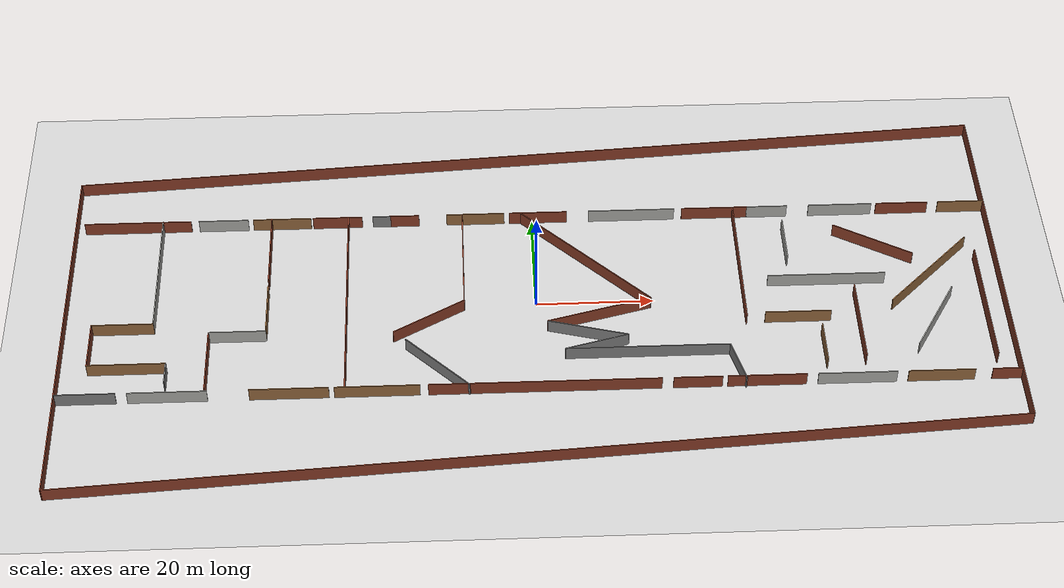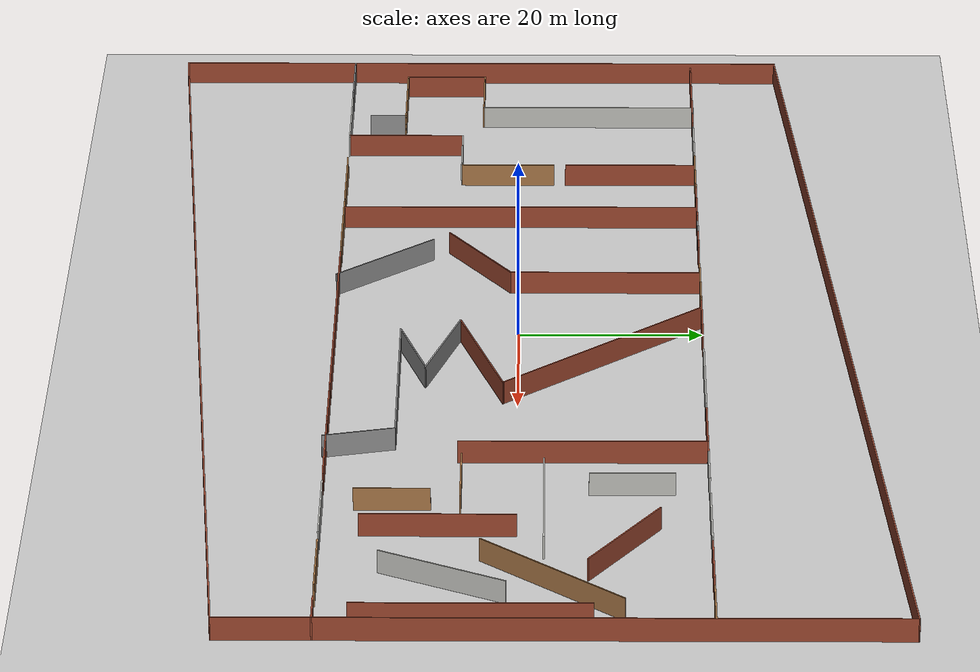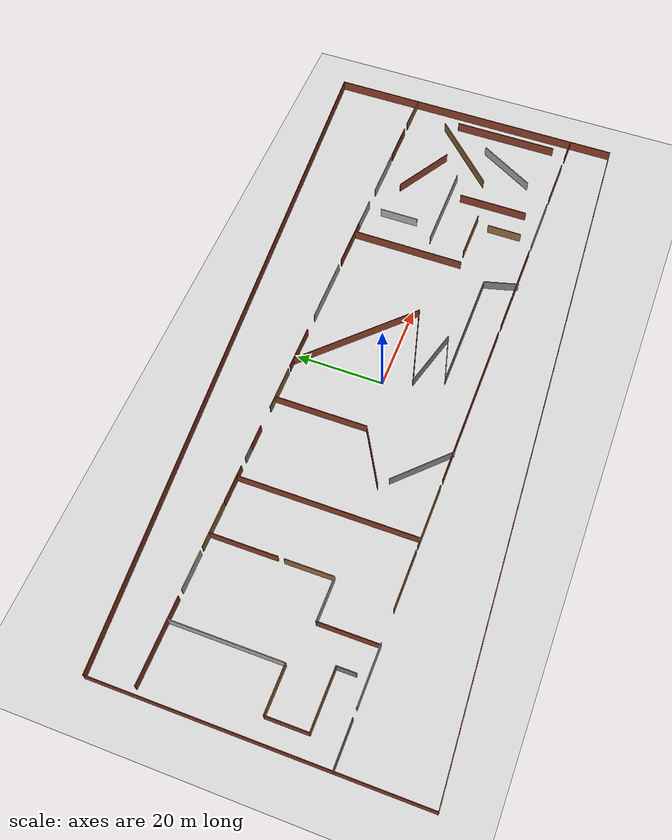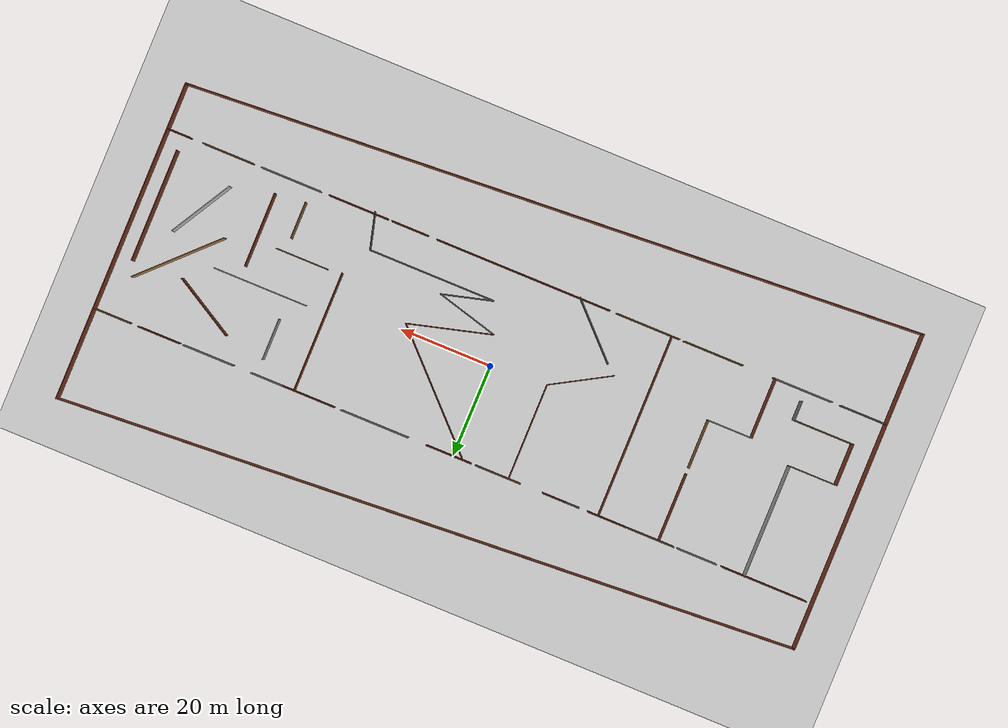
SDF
<sdf version="1.6">
 <world name="default">
  <model name="ground_plane">
   <static>1</static>
   <link name="link">
    <collision name="collision">
     <geometry><plane><normal>0 0 1</normal><size>100 100</size></plane></geometry>
     <surface><friction><ode><mu>100</mu><mu2>50</mu2></ode></friction></surface>
    </collision>
    <visual name="visual">
     <cast_shadows>0</cast_shadows>
     <geometry><plane><normal>0 0 1</normal><size>100 100</size></plane></geometry>
     <material>
      <script><uri>file://media/materials/scripts/gazebo.material</uri><name>Gazebo/Grey</name></script>
     </material>
    </visual>
   </link>
  </model>
  <model name="office_hall">
   <link name="Wall_10">
    <collision name="Wall_10_Collision">
     <geometry><box><size>160.462 0.15 2.5</size></box></geometry>
     <pose>0 0 1.25 0 -0 0</pose>
    </collision>
    <visual name="Wall_10_Visual">
     <pose>0 0 1.25 0 -0 0</pose>
     <geometry><box><size>160.462 0.15 2.5</size></box></geometry>
     <material>
      <script><uri>file://media/materials/scripts/gazebo.material</uri><name>Gazebo/Bricks</name></script>
      <ambient>1 1 1 1</ambient>
     </material>
     <meta><layer>0</layer></meta>
    </visual>
    <pose>0 -35 0 0 -0 -3.07917</pose>
   </link>
   <link name="Wall_101">
    <collision name="Wall_101_Collision">
     <geometry><box><size>15 0.15 2.5</size></box></geometry>
     <pose>0 0 1.25 0 -0 0</pose>
    </collision>
    <visual name="Wall_101_Visual">
     <pose>0 0 1.25 0 -0 0</pose>
     <geometry><box><size>15 0.15 2.5</size></box></geometry>
     <material>
      <script><uri>file://media/materials/scripts/gazebo.material</uri><name>Gazebo/Grey</name></script>
      <ambient>1 1 1 1</ambient>
     </material>
     <meta><layer>0</layer></meta>
    </visual>
    <pose>-16.9833 -14.9511 0 0 -0 -0.785398</pose>
   </link>
   <link name="Wall_103">
    <collision name="Wall_103_Collision">
     <geometry><box><size>30.5 0.15 2.5</size></box></geometry>
     <pose>0 0 1.25 0 -0 0</pose>
    </collision>
    <visual name="Wall_103_Visual">
     <pose>0 0 1.25 0 -0 0</pose>
     <geometry><box><size>30.5 0.15 2.5</size></box></geometry>
     <material>
      <script><uri>file://media/materials/scripts/gazebo.material</uri><name>Gazebo/Bricks</name></script>
      <ambient>1 1 1 1</ambient>
     </material>
     <meta><layer>0</layer></meta>
    </visual>
    <pose>8.72796 9.16226 0 0 -0 -0.785398</pose>
   </link>
   <link name="Wall_104">
    <collision name="Wall_104_Collision">
     <geometry><box><size>18.5 0.15 2.5</size></box></geometry>
     <pose>0 0 1.25 0 -0 0</pose>
    </collision>
    <visual name="Wall_104_Visual">
     <pose>0 0 1.25 0 -0 0</pose>
     <geometry><box><size>18.5 0.15 2.5</size></box></geometry>
     <material>
      <script><uri>file://media/materials/scripts/gazebo.material</uri><name>Gazebo/Bricks</name></script>
      <ambient>1 1 1 1</ambient>
     </material>
     <meta><layer>0</layer></meta>
    </visual>
    <pose>10.5959 -3.94275 0 0 -0 -2.87979</pose>
   </link>
   <link name="Wall_105">
    <collision name="Wall_105_Collision">
     <geometry><box><size>14 0.15 2.5</size></box></geometry>
     <pose>0 0 1.25 0 -0 0</pose>
    </collision>
    <visual name="Wall_105_Visual">
     <pose>0 0 1.25 0 -0 0</pose>
     <geometry><box><size>14 0.15 2.5</size></box></geometry>
     <material>
      <script><uri>file://media/materials/scripts/gazebo.material</uri><name>Gazebo/Grey</name></script>
      <ambient>1 1 1 1</ambient>
     </material>
     <meta><layer>0</layer></meta>
    </visual>
    <pose>8.4226 -8.10974 0 0 -0 -0.261799</pose>
   </link>
   <link name="Wall_106">
    <collision name="Wall_106_Collision">
     <geometry><box><size>11.25 0.15 2.5</size></box></geometry>
     <pose>0 0 1.25 0 -0 0</pose>
    </collision>
    <visual name="Wall_106_Visual">
     <pose>0 0 1.25 0 -0 0</pose>
     <geometry><box><size>11.25 0.15 2.5</size></box></geometry>
     <material>
      <script><uri>file://media/materials/scripts/gazebo.material</uri><name>Gazebo/Grey</name></script>
      <ambient>1 1 1 1</ambient>
     </material>
     <meta><layer>0</layer></meta>
    </visual>
    <pose>9.75075 -11.3385 0 0 -0 -2.87979</pose>
   </link>
   <link name="Wall_107">
    <collision name="Wall_107_Collision">
     <geometry><box><size>27.75 0.15 2.5</size></box></geometry>
     <pose>0 0 1.25 0 -0 0</pose>
    </collision>
    <visual name="Wall_107_Visual">
     <pose>0 0 1.25 0 -0 0</pose>
     <geometry><box><size>27.75 0.15 2.5</size></box></geometry>
     <material>
      <script><uri>file://media/materials/scripts/gazebo.material</uri><name>Gazebo/Grey</name></script>
      <ambient>1 1 1 1</ambient>
     </material>
     <meta><layer>0</layer></meta>
    </visual>
    <pose>18.1899 -12.775 0 0 -0 0</pose>
   </link>
   <link name="Wall_108">
    <collision name="Wall_108_Collision">
     <geometry><box><size>8 0.15 2.5</size></box></geometry>
     <pose>0 0 1.25 0 -0 0</pose>
    </collision>
    <visual name="Wall_108_Visual">
     <pose>0 0 1.25 0 -0 0</pose>
     <geometry><box><size>8 0.15 2.5</size></box></geometry>
     <material>
      <script><uri>file://media/materials/scripts/gazebo.material</uri><name>Gazebo/Grey</name></script>
      <ambient>1 1 1 1</ambient>
     </material>
     <meta><layer>0</layer></meta>
    </visual>
    <pose>33.0057 -16.5662 0 0 -0 -1.309</pose>
   </link>
   <link name="Wall_11">
    <collision name="Wall_11_Collision">
     <geometry><box><size>70.15 0.15 2.5</size></box></geometry>
     <pose>0 0 1.25 0 -0 0</pose>
    </collision>
    <visual name="Wall_11_Visual">
     <pose>0 0 1.25 0 -0 0</pose>
     <geometry><box><size>70.15 0.15 2.5</size></box></geometry>
     <material>
      <script><uri>file://media/materials/scripts/gazebo.material</uri><name>Gazebo/Bricks</name></script>
      <ambient>1 1 1 1</ambient>
     </material>
     <meta><layer>0</layer></meta>
    </visual>
    <pose>-80 -5 0 0 -0 1.5708</pose>
   </link>
   <link name="Wall_110">
    <collision name="Wall_110_Collision">
     <geometry><box><size>26.25 0.15 2.5</size></box></geometry>
     <pose>0 0 1.25 0 -0 0</pose>
    </collision>
    <visual name="Wall_110_Visual">
     <pose>0 0 1.25 0 -0 0</pose>
     <geometry><box><size>26.25 0.15 2.5</size></box></geometry>
     <material>
      <script><uri>file://media/materials/scripts/gazebo.material</uri><name>Gazebo/Bricks</name></script>
      <ambient>1 1 1 1</ambient>
     </material>
     <meta><layer>0</layer></meta>
    </visual>
    <pose>35.4468 6.95022 0 0 -0 -1.5708</pose>
   </link>
   <link name="Wall_112">
    <collision name="Wall_112_Collision">
     <geometry><box><size>11.25 0.15 2.5</size></box></geometry>
     <pose>0 0 1.25 0 -0 0</pose>
    </collision>
    <visual name="Wall_112_Visual">
     <pose>0 0 1.25 0 -0 0</pose>
     <geometry><box><size>11.25 0.15 2.5</size></box></geometry>
     <material>
      <script><uri>file://media/materials/scripts/gazebo.material</uri><name>Gazebo/Wood</name></script>
      <ambient>1 1 1 1</ambient>
     </material>
     <meta><layer>0</layer></meta>
    </visual>
    <pose>44.2252 -5.7192 0 0 -0 0</pose>
   </link>
   <link name="Wall_114">
    <collision name="Wall_114_Collision">
     <geometry><box><size>8 0.15 2.5</size></box></geometry>
     <pose>0 0 1.25 0 -0 0</pose>
    </collision>
    <visual name="Wall_114_Visual">
     <pose>0 0 1.25 0 -0 0</pose>
     <geometry><box><size>8 0.15 2.5</size></box></geometry>
     <material>
      <script><uri>file://media/materials/scripts/gazebo.material</uri><name>Gazebo/Wood</name></script>
      <ambient>1 1 1 1</ambient>
     </material>
     <meta><layer>0</layer></meta>
    </visual>
    <pose>47.9299 -12.765 0 0 -0 -1.5708</pose>
   </link>
   <link name="Wall_116">
    <collision name="Wall_116_Collision">
     <geometry><box><size>9 0.15 2.5</size></box></geometry>
     <pose>0 0 1.25 0 -0 0</pose>
    </collision>
    <visual name="Wall_116_Visual">
     <pose>0 0 1.25 0 -0 0</pose>
     <geometry><box><size>9 0.15 2.5</size></box></geometry>
     <material>
      <script><uri>file://media/materials/scripts/gazebo.material</uri><name>Gazebo/CeilingTiled</name></script>
      <ambient>1 1 1 1</ambient>
     </material>
     <meta><layer>0</layer></meta>
    </visual>
    <pose>43.8406 12.024 0 0 -0 -1.5708</pose>
   </link>
   <link name="Wall_118">
    <collision name="Wall_118_Collision">
     <geometry><box><size>20.25 0.15 2.5</size></box></geometry>
     <pose>0 0 1.25 0 -0 0</pose>
    </collision>
    <visual name="Wall_118_Visual">
     <pose>0 0 1.25 0 -0 0</pose>
     <geometry><box><size>20.25 0.15 2.5</size></box></geometry>
     <material>
      <script><uri>file://media/materials/scripts/gazebo.material</uri><name>Gazebo/CeilingTiled</name></script>
      <ambient>1 1 1 1</ambient>
     </material>
     <meta><layer>0</layer></meta>
    </visual>
    <pose>50.0165 2.88981 0 0 -0 0</pose>
   </link>
   <link name="Wall_121">
    <collision name="Wall_121_Collision">
     <geometry><box><size>16.25 0.15 2.5</size></box></geometry>
     <pose>0 0 1.25 0 -0 0</pose>
    </collision>
    <visual name="Wall_121_Visual">
     <pose>0 0 1.25 0 -0 0</pose>
     <geometry><box><size>16.25 0.15 2.5</size></box></geometry>
     <material>
      <script><uri>file://media/materials/scripts/gazebo.material</uri><name>Gazebo/Bricks</name></script>
      <ambient>1 1 1 1</ambient>
     </material>
     <meta><layer>0</layer></meta>
    </visual>
    <pose>54.4942 -7.95812 0 0 -0 -1.5708</pose>
   </link>
   <link name="Wall_123">
    <collision name="Wall_123_Collision">
     <geometry><box><size>15 0.15 2.5</size></box></geometry>
     <pose>0 0 1.25 0 -0 0</pose>
    </collision>
    <visual name="Wall_123_Visual">
     <pose>0 0 1.25 0 -0 0</pose>
     <geometry><box><size>15 0.15 2.5</size></box></geometry>
     <material>
      <script><uri>file://media/materials/scripts/gazebo.material</uri><name>Gazebo/Bricks</name></script>
      <ambient>1 1 1 1</ambient>
     </material>
     <meta><layer>0</layer></meta>
    </visual>
    <pose>59.0951 11.1223 0 0 -0 -0.523599</pose>
   </link>
   <link name="Wall_125">
    <collision name="Wall_125_Collision">
     <geometry><box><size>15 0.15 2.5</size></box></geometry>
     <pose>0 0 1.25 0 -0 0</pose>
    </collision>
    <visual name="Wall_125_Visual">
     <pose>0 0 1.25 0 -0 0</pose>
     <geometry><box><size>15 0.15 2.5</size></box></geometry>
     <material>
      <script><uri>file://media/materials/scripts/gazebo.material</uri><name>Gazebo/CeilingTiled</name></script>
      <ambient>1 1 1 1</ambient>
     </material>
     <meta><layer>0</layer></meta>
    </visual>
    <pose>67.3538 -7.35991 0 0 -0 1.0472</pose>
   </link>
   <link name="Wall_127">
    <collision name="Wall_127_Collision">
     <geometry><box><size>20.75 0.15 2.5</size></box></geometry>
     <pose>0 0 1.25 0 -0 0</pose>
    </collision>
    <visual name="Wall_127_Visual">
     <pose>0 0 1.25 0 -0 0</pose>
     <geometry><box><size>20.75 0.15 2.5</size></box></geometry>
     <material>
      <script><uri>file://media/materials/scripts/gazebo.material</uri><name>Gazebo/Wood</name></script>
      <ambient>1 1 1 1</ambient>
     </material>
     <meta><layer>0</layer></meta>
    </visual>
    <pose>67.9114 3.71625 0 0 -0 0.785398</pose>
   </link>
   <link name="Wall_129">
    <collision name="Wall_129_Collision">
     <geometry><box><size>24.5 0.15 2.5</size></box></geometry>
     <pose>0 0 1.25 0 -0 0</pose>
    </collision>
    <visual name="Wall_129_Visual">
     <pose>0 0 1.25 0 -0 0</pose>
     <geometry><box><size>24.5 0.15 2.5</size></box></geometry>
     <material>
      <script><uri>file://media/materials/scripts/gazebo.material</uri><name>Gazebo/Bricks</name></script>
      <ambient>1 1 1 1</ambient>
     </material>
     <meta><layer>0</layer></meta>
    </visual>
    <pose>76.4472 -4.33501 0 0 -0 -1.5708</pose>
   </link>
   <link name="Wall_20">
    <collision name="Wall_20_Collision">
     <geometry><box><size>11.15 0.15 2.5</size></box></geometry>
     <pose>0 0 1.25 0 -0 0</pose>
    </collision>
    <visual name="Wall_20_Visual">
     <pose>0 0 1.25 0 -0 0</pose>
     <geometry><box><size>11.15 0.15 2.5</size></box></geometry>
     <material>
      <script><uri>file://media/materials/scripts/gazebo.material</uri><name>Gazebo/CeilingTiled</name></script>
      <ambient>1 1 1 1</ambient>
     </material>
     <meta><layer>0</layer></meta>
    </visual>
    <pose>54.5 20 0 0 -0 0</pose>
   </link>
   <link name="Wall_22">
    <collision name="Wall_22_Collision">
     <geometry><box><size>9.15 0.15 2.5</size></box></geometry>
     <pose>0 0 1.25 0 -0 0</pose>
    </collision>
    <visual name="Wall_22_Visual">
     <pose>0 0 1.25 0 -0 0</pose>
     <geometry><box><size>9.15 0.15 2.5</size></box></geometry>
     <material>
      <script><uri>file://media/materials/scripts/gazebo.material</uri><name>Gazebo/Bricks</name></script>
      <ambient>1 1 1 1</ambient>
     </material>
     <meta><layer>0</layer></meta>
    </visual>
    <pose>65.5 20 0 0 -0 0</pose>
   </link>
   <link name="Wall_24">
    <collision name="Wall_24_Collision">
     <geometry><box><size>8.15 0.15 2.5</size></box></geometry>
     <pose>0 0 1.25 0 -0 0</pose>
    </collision>
    <visual name="Wall_24_Visual">
     <pose>0 0 1.25 0 -0 0</pose>
     <geometry><box><size>8.15 0.15 2.5</size></box></geometry>
     <material>
      <script><uri>file://media/materials/scripts/gazebo.material</uri><name>Gazebo/Wood</name></script>
      <ambient>1 1 1 1</ambient>
     </material>
     <meta><layer>0</layer></meta>
    </visual>
    <pose>76 20 0 0 -0 0</pose>
   </link>
   <link name="Wall_40">
    <collision name="Wall_40_Collision">
     <geometry><box><size>10.15 0.15 2.5</size></box></geometry>
     <pose>0 0 1.25 0 -0 0</pose>
    </collision>
    <visual name="Wall_40_Visual">
     <pose>0 0 1.25 0 -0 0</pose>
     <geometry><box><size>10.15 0.15 2.5</size></box></geometry>
     <material>
      <script><uri>file://media/materials/scripts/gazebo.material</uri><name>Gazebo/Wood</name></script>
      <ambient>1 1 1 1</ambient>
     </material>
     <meta><layer>0</layer></meta>
    </visual>
    <pose>-10 20 0 0 -0 0</pose>
   </link>
   <link name="Wall_42">
    <collision name="Wall_42_Collision">
     <geometry><box><size>5.15 0.15 2.5</size></box></geometry>
     <pose>0 0 1.25 0 -0 0</pose>
    </collision>
    <visual name="Wall_42_Visual">
     <pose>0 0 1.25 0 -0 0</pose>
     <geometry><box><size>5.15 0.15 2.5</size></box></geometry>
     <material>
      <script><uri>file://media/materials/scripts/gazebo.material</uri><name>Gazebo/Bricks</name></script>
      <ambient>1 1 1 1</ambient>
     </material>
     <meta><layer>0</layer></meta>
    </visual>
    <pose>-22.5 20 0 0 -0 0</pose>
   </link>
   <link name="Wall_44">
    <collision name="Wall_44_Collision">
     <geometry><box><size>10.15 0.15 2.5</size></box></geometry>
     <pose>0 0 1.25 0 -0 0</pose>
    </collision>
    <visual name="Wall_44_Visual">
     <pose>0 0 1.25 0 -0 0</pose>
     <geometry><box><size>10.15 0.15 2.5</size></box></geometry>
     <material>
      <script><uri>file://media/materials/scripts/gazebo.material</uri><name>Gazebo/Wood</name></script>
      <ambient>1 1 1 1</ambient>
     </material>
     <meta><layer>0</layer></meta>
    </visual>
    <pose>-44 20 0 0 -0 0</pose>
   </link>
   <link name="Wall_46">
    <collision name="Wall_46_Collision">
     <geometry><box><size>8.65 0.15 2.5</size></box></geometry>
     <pose>0 0 1.25 0 -0 0</pose>
    </collision>
    <visual name="Wall_46_Visual">
     <pose>0 0 1.25 0 -0 0</pose>
     <geometry><box><size>8.65 0.15 2.5</size></box></geometry>
     <material>
      <script><uri>file://media/materials/scripts/gazebo.material</uri><name>Gazebo/CeilingTiled</name></script>
      <ambient>1 1 1 1</ambient>
     </material>
     <meta><layer>0</layer></meta>
    </visual>
    <pose>-54.25 20 0 0 -0 0</pose>
   </link>
   <link name="Wall_48">
    <collision name="Wall_48_Collision">
     <geometry><box><size>18.65 0.15 2.5</size></box></geometry>
     <pose>0 0 1.25 0 -0 0</pose>
    </collision>
    <visual name="Wall_48_Visual">
     <pose>0 0 1.25 0 -0 0</pose>
     <geometry><box><size>18.65 0.15 2.5</size></box></geometry>
     <material>
      <script><uri>file://media/materials/scripts/gazebo.material</uri><name>Gazebo/Bricks</name></script>
      <ambient>1 1 1 1</ambient>
     </material>
     <meta><layer>0</layer></meta>
    </visual>
    <pose>-69.25 20 0 0 -0 0</pose>
   </link>
   <link name="Wall_52">
    <collision name="Wall_52_Collision">
     <geometry><box><size>5.15 0.15 2.5</size></box></geometry>
     <pose>0 0 1.25 0 -0 0</pose>
    </collision>
    <visual name="Wall_52_Visual">
     <pose>0 0 1.25 0 -0 0</pose>
     <geometry><box><size>5.15 0.15 2.5</size></box></geometry>
     <material>
      <script><uri>file://media/materials/scripts/gazebo.material</uri><name>Gazebo/Bricks</name></script>
      <ambient>1 1 1 1</ambient>
     </material>
     <meta><layer>0</layer></meta>
    </visual>
    <pose>77.5 -20 0 0 -0 0</pose>
   </link>
   <link name="Wall_54">
    <collision name="Wall_54_Collision">
     <geometry><box><size>10.15 0.15 2.5</size></box></geometry>
     <pose>0 0 1.25 0 -0 0</pose>
    </collision>
    <visual name="Wall_54_Visual">
     <pose>0 0 1.25 0 -0 0</pose>
     <geometry><box><size>10.15 0.15 2.5</size></box></geometry>
     <material>
      <script><uri>file://media/materials/scripts/gazebo.material</uri><name>Gazebo/Bricks</name></script>
      <ambient>1 1 1 1</ambient>
     </material>
     <meta><layer>0</layer></meta>
    </visual>
    <pose>1 20 0 0 -0 0</pose>
   </link>
   <link name="Wall_56">
    <collision name="Wall_56_Collision">
     <geometry><box><size>7.15 0.15 2.5</size></box></geometry>
     <pose>0 0 1.25 0 -0 0</pose>
    </collision>
    <visual name="Wall_56_Visual">
     <pose>0 0 1.25 0 -0 0</pose>
     <geometry><box><size>7.15 0.15 2.5</size></box></geometry>
     <material>
      <script><uri>file://media/materials/scripts/gazebo.material</uri><name>Gazebo/CeilingTiled</name></script>
      <ambient>1 1 1 1</ambient>
     </material>
     <meta><layer>0</layer></meta>
    </visual>
    <pose>41.5 20 0 0 -0 0</pose>
   </link>
   <link name="Wall_58">
    <collision name="Wall_58_Collision">
     <geometry><box><size>11.65 0.15 2.5</size></box></geometry>
     <pose>0 0 1.25 0 -0 0</pose>
    </collision>
    <visual name="Wall_58_Visual">
     <pose>0 0 1.25 0 -0 0</pose>
     <geometry><box><size>11.65 0.15 2.5</size></box></geometry>
     <material>
      <script><uri>file://media/materials/scripts/gazebo.material</uri><name>Gazebo/Bricks</name></script>
      <ambient>1 1 1 1</ambient>
     </material>
     <meta><layer>0</layer></meta>
    </visual>
    <pose>32.25 20 0 0 -0 0</pose>
   </link>
   <link name="Wall_60">
    <collision name="Wall_60_Collision">
     <geometry><box><size>3.15 0.15 2.5</size></box></geometry>
     <pose>0 0 1.25 0 -0 0</pose>
    </collision>
    <visual name="Wall_60_Visual">
     <pose>0 0 1.25 0 -0 0</pose>
     <geometry><box><size>3.15 0.15 2.5</size></box></geometry>
     <material>
      <script><uri>file://media/materials/scripts/gazebo.material</uri><name>Gazebo/Grey</name></script>
      <ambient>1 1 1 1</ambient>
     </material>
     <meta><layer>0</layer></meta>
    </visual>
    <pose>-26.5 20 0 0 -0 0</pose>
   </link>
   <link name="Wall_62">
    <collision name="Wall_62_Collision">
     <geometry><box><size>8.65 0.15 2.5</size></box></geometry>
     <pose>0 0 1.25 0 -0 0</pose>
    </collision>
    <visual name="Wall_62_Visual">
     <pose>0 0 1.25 0 -0 0</pose>
     <geometry><box><size>8.65 0.15 2.5</size></box></geometry>
     <material>
      <script><uri>file://media/materials/scripts/gazebo.material</uri><name>Gazebo/Bricks</name></script>
      <ambient>1 1 1 1</ambient>
     </material>
     <meta><layer>0</layer></meta>
    </visual>
    <pose>-34.25 20 0 0 -0 0</pose>
   </link>
   <link name="Wall_64">
    <collision name="Wall_64_Collision">
     <geometry><box><size>10.15 0.15 2.5</size></box></geometry>
     <pose>0 0 1.25 0 -0 0</pose>
    </collision>
    <visual name="Wall_64_Visual">
     <pose>0 0 1.25 0 -0 0</pose>
     <geometry><box><size>10.15 0.15 2.5</size></box></geometry>
     <material>
      <script><uri>file://media/materials/scripts/gazebo.material</uri><name>Gazebo/Grey</name></script>
      <ambient>1 1 1 1</ambient>
     </material>
     <meta><layer>0</layer></meta>
    </visual>
    <pose>-75 -20 0 0 -0 0</pose>
   </link>
   <link name="Wall_66">
    <collision name="Wall_66_Collision">
     <geometry><box><size>13.15 0.15 2.5</size></box></geometry>
     <pose>0 0 1.25 0 -0 0</pose>
    </collision>
    <visual name="Wall_66_Visual">
     <pose>0 0 1.25 0 -0 0</pose>
     <geometry><box><size>13.15 0.15 2.5</size></box></geometry>
     <material>
      <script><uri>file://media/materials/scripts/gazebo.material</uri><name>Gazebo/Wood</name></script>
      <ambient>1 1 1 1</ambient>
     </material>
     <meta><layer>0</layer></meta>
    </visual>
    <pose>-41.5 -20 0 0 -0 0</pose>
   </link>
   <link name="Wall_68">
    <collision name="Wall_68_Collision">
     <geometry><box><size>13.15 0.15 2.5</size></box></geometry>
     <pose>0 0 1.25 0 -0 0</pose>
    </collision>
    <visual name="Wall_68_Visual">
     <pose>0 0 1.25 0 -0 0</pose>
     <geometry><box><size>13.15 0.15 2.5</size></box></geometry>
     <material>
      <script><uri>file://media/materials/scripts/gazebo.material</uri><name>Gazebo/CeilingTiled</name></script>
      <ambient>1 1 1 1</ambient>
     </material>
     <meta><layer>0</layer></meta>
    </visual>
    <pose>-61.5 -20 0 0 -0 0</pose>
   </link>
   <link name="Wall_70">
    <collision name="Wall_70_Collision">
     <geometry><box><size>14.15 0.15 2.5</size></box></geometry>
     <pose>0 0 1.25 0 -0 0</pose>
    </collision>
    <visual name="Wall_70_Visual">
     <pose>0 0 1.25 0 -0 0</pose>
     <geometry><box><size>14.15 0.15 2.5</size></box></geometry>
     <material>
      <script><uri>file://media/materials/scripts/gazebo.material</uri><name>Gazebo/Wood</name></script>
      <ambient>1 1 1 1</ambient>
     </material>
     <meta><layer>0</layer></meta>
    </visual>
    <pose>-27 -20 0 0 -0 0</pose>
   </link>
   <link name="Wall_72">
    <collision name="Wall_72_Collision">
     <geometry><box><size>38.65 0.15 2.5</size></box></geometry>
     <pose>0 0 1.25 0 -0 0</pose>
    </collision>
    <visual name="Wall_72_Visual">
     <pose>0 0 1.25 0 -0 0</pose>
     <geometry><box><size>38.65 0.15 2.5</size></box></geometry>
     <material>
      <script><uri>file://media/materials/scripts/gazebo.material</uri><name>Gazebo/Bricks</name></script>
      <ambient>1 1 1 1</ambient>
     </material>
     <meta><layer>0</layer></meta>
    </visual>
    <pose>0.75 -20 0 0 -0 0</pose>
   </link>
   <link name="Wall_74">
    <collision name="Wall_74_Collision">
     <geometry><box><size>13.15 0.15 2.5</size></box></geometry>
     <pose>0 0 1.25 0 -0 0</pose>
    </collision>
    <visual name="Wall_74_Visual">
     <pose>0 0 1.25 0 -0 0</pose>
     <geometry><box><size>13.15 0.15 2.5</size></box></geometry>
     <material>
      <script><uri>file://media/materials/scripts/gazebo.material</uri><name>Gazebo/CeilingTiled</name></script>
      <ambient>1 1 1 1</ambient>
     </material>
     <meta><layer>0</layer></meta>
    </visual>
    <pose>52.5 -20 0 0 -0 0</pose>
   </link>
   <link name="Wall_76">
    <collision name="Wall_76_Collision">
     <geometry><box><size>13.15 0.15 2.5</size></box></geometry>
     <pose>0 0 1.25 0 -0 0</pose>
    </collision>
    <visual name="Wall_76_Visual">
     <pose>0 0 1.25 0 -0 0</pose>
     <geometry><box><size>13.15 0.15 2.5</size></box></geometry>
     <material>
      <script><uri>file://media/materials/scripts/gazebo.material</uri><name>Gazebo/Bricks</name></script>
      <ambient>1 1 1 1</ambient>
     </material>
     <meta><layer>0</layer></meta>
    </visual>
    <pose>37.5 -20 0 0 -0 0</pose>
   </link>
   <link name="Wall_78">
    <collision name="Wall_78_Collision">
     <geometry><box><size>8.15 0.15 2.5</size></box></geometry>
     <pose>0 0 1.25 0 -0 0</pose>
    </collision>
    <visual name="Wall_78_Visual">
     <pose>0 0 1.25 0 -0 0</pose>
     <geometry><box><size>8.15 0.15 2.5</size></box></geometry>
     <material>
      <script><uri>file://media/materials/scripts/gazebo.material</uri><name>Gazebo/Bricks</name></script>
      <ambient>1 1 1 1</ambient>
     </material>
     <meta><layer>0</layer></meta>
    </visual>
    <pose>26 -20 0 0 -0 0</pose>
   </link>
   <link name="Wall_8">
    <collision name="Wall_8_Collision">
     <geometry><box><size>160.462 0.15 2.5</size></box></geometry>
     <pose>0 0 1.25 0 -0 0</pose>
    </collision>
    <visual name="Wall_8_Visual">
     <pose>0 0 1.25 0 -0 0</pose>
     <geometry><box><size>160.462 0.15 2.5</size></box></geometry>
     <material>
      <script><uri>file://media/materials/scripts/gazebo.material</uri><name>Gazebo/Bricks</name></script>
      <ambient>1 1 1 1</ambient>
     </material>
     <meta><layer>0</layer></meta>
    </visual>
    <pose>0 35 0 0 -0 0.062419</pose>
   </link>
   <link name="Wall_80">
    <collision name="Wall_80_Collision">
     <geometry><box><size>11.15 0.15 2.5</size></box></geometry>
     <pose>0 0 1.25 0 -0 0</pose>
    </collision>
    <visual name="Wall_80_Visual">
     <pose>0 0 1.25 0 -0 0</pose>
     <geometry><box><size>11.15 0.15 2.5</size></box></geometry>
     <material>
      <script><uri>file://media/materials/scripts/gazebo.material</uri><name>Gazebo/Wood</name></script>
      <ambient>1 1 1 1</ambient>
     </material>
     <meta><layer>0</layer></meta>
    </visual>
    <pose>66.5 -20 0 0 -0 0</pose>
   </link>
   <link name="Wall_82">
    <collision name="Wall_82_Collision">
     <geometry><box><size>15.15 0.15 2.5</size></box></geometry>
     <pose>0 0 1.25 0 -0 0</pose>
    </collision>
    <visual name="Wall_82_Visual">
     <pose>0 0 1.25 0 -0 0</pose>
     <geometry><box><size>15.15 0.15 2.5</size></box></geometry>
     <material>
      <script><uri>file://media/materials/scripts/gazebo.material</uri><name>Gazebo/CeilingTiled</name></script>
      <ambient>1 1 1 1</ambient>
     </material>
     <meta><layer>0</layer></meta>
    </visual>
    <pose>17.5 20 0 0 -0 0</pose>
   </link>
   <link name="Wall_84">
    <collision name="Wall_84_Collision">
     <geometry><box><size>24.75 0.15 2.5</size></box></geometry>
     <pose>0 0 1.25 0 -0 0</pose>
    </collision>
    <visual name="Wall_84_Visual">
     <pose>0 0 1.25 0 -0 0</pose>
     <geometry><box><size>24.75 0.15 2.5</size></box></geometry>
     <material>
      <script><uri>file://media/materials/scripts/gazebo.material</uri><name>Gazebo/CeilingTiled</name></script>
      <ambient>1 1 1 1</ambient>
     </material>
     <meta><layer>0</layer></meta>
    </visual>
    <pose>-64.8482 7.80783 0 0 -0 -1.5708</pose>
   </link>
   <link name="Wall_85">
    <collision name="Wall_85_Collision">
     <geometry><box><size>10.5 0.15 2.5</size></box></geometry>
     <pose>0 0 1.25 0 -0 0</pose>
    </collision>
    <visual name="Wall_85_Visual">
     <pose>0 0 1.25 0 -0 0</pose>
     <geometry><box><size>10.5 0.15 2.5</size></box></geometry>
     <material>
      <script><uri>file://media/materials/scripts/gazebo.material</uri><name>Gazebo/Wood</name></script>
      <ambient>1 1 1 1</ambient>
     </material>
     <meta><layer>0</layer></meta>
    </visual>
    <pose>-70.0232 -4.49217 0 0 -0 3.14159</pose>
   </link>
   <link name="Wall_86">
    <collision name="Wall_86_Collision">
     <geometry><box><size>9.25 0.15 2.5</size></box></geometry>
     <pose>0 0 1.25 0 -0 0</pose>
    </collision>
    <visual name="Wall_86_Visual">
     <pose>0 0 1.25 0 -0 0</pose>
     <geometry><box><size>9.25 0.15 2.5</size></box></geometry>
     <material>
      <script><uri>file://media/materials/scripts/gazebo.material</uri><name>Gazebo/Bricks</name></script>
      <ambient>1 1 1 1</ambient>
     </material>
     <meta><layer>0</layer></meta>
    </visual>
    <pose>-75.1982 -9.04217 0 0 -0 -1.5708</pose>
   </link>
   <link name="Wall_87">
    <collision name="Wall_87_Collision">
     <geometry><box><size>13.25 0.15 2.5</size></box></geometry>
     <pose>0 0 1.25 0 -0 0</pose>
    </collision>
    <visual name="Wall_87_Visual">
     <pose>0 0 1.25 0 -0 0</pose>
     <geometry><box><size>13.25 0.15 2.5</size></box></geometry>
     <material>
      <script><uri>file://media/materials/scripts/gazebo.material</uri><name>Gazebo/Wood</name></script>
      <ambient>1 1 1 1</ambient>
     </material>
     <meta><layer>0</layer></meta>
    </visual>
    <pose>-68.6482 -13.5922 0 0 -0 0</pose>
   </link>
   <link name="Wall_88">
    <collision name="Wall_88_Collision">
     <geometry><box><size>4.25 0.15 2.5</size></box></geometry>
     <pose>0 0 1.25 0 -0 0</pose>
    </collision>
    <visual name="Wall_88_Visual">
     <pose>0 0 1.25 0 -0 0</pose>
     <geometry><box><size>4.25 0.15 2.5</size></box></geometry>
     <material>
      <script><uri>file://media/materials/scripts/gazebo.material</uri><name>Gazebo/Grey</name></script>
      <ambient>1 1 1 1</ambient>
     </material>
     <meta><layer>0</layer></meta>
    </visual>
    <pose>-62.0982 -15.6422 0 0 -0 -1.5708</pose>
   </link>
   <link name="Wall_9">
    <collision name="Wall_9_Collision">
     <geometry><box><size>70.15 0.15 2.5</size></box></geometry>
     <pose>0 0 1.25 0 -0 0</pose>
    </collision>
    <visual name="Wall_9_Visual">
     <pose>0 0 1.25 0 -0 0</pose>
     <geometry><box><size>70.15 0.15 2.5</size></box></geometry>
     <material>
      <script><uri>file://media/materials/scripts/gazebo.material</uri><name>Gazebo/Bricks</name></script>
      <ambient>1 1 1 1</ambient>
     </material>
     <meta><layer>0</layer></meta>
    </visual>
    <pose>80 5 0 0 -0 -1.5708</pose>
   </link>
   <link name="Wall_90">
    <collision name="Wall_90_Collision">
     <geometry><box><size>15 0.15 2.5</size></box></geometry>
     <pose>0 0 1.25 0 -0 0</pose>
    </collision>
    <visual name="Wall_90_Visual">
     <pose>0 0 1.25 0 -0 0</pose>
     <geometry><box><size>15 0.15 2.5</size></box></geometry>
     <material>
      <script><uri>file://media/materials/scripts/gazebo.material</uri><name>Gazebo/Bricks</name></script>
      <ambient>1 1 1 1</ambient>
     </material>
     <meta><layer>0</layer></meta>
    </visual>
    <pose>-45.8007 12.5752 0 0 -0 -1.5708</pose>
   </link>
   <link name="Wall_92">
    <collision name="Wall_92_Collision">
     <geometry><box><size>10.75 0.15 2.5</size></box></geometry>
     <pose>0 0 1.25 0 -0 0</pose>
    </collision>
    <visual name="Wall_92_Visual">
     <pose>0 0 1.25 0 -0 0</pose>
     <geometry><box><size>10.75 0.15 2.5</size></box></geometry>
     <material>
      <script><uri>file://media/materials/scripts/gazebo.material</uri><name>Gazebo/Wood</name></script>
      <ambient>1 1 1 1</ambient>
     </material>
     <meta><layer>0</layer></meta>
    </visual>
    <pose>-45.8007 -1.54929 0 0 -0 -1.5708</pose>
   </link>
   <link name="Wall_93">
    <collision name="Wall_93_Collision">
     <geometry><box><size>9.75 0.15 2.5</size></box></geometry>
     <pose>0 0 1.25 0 -0 0</pose>
    </collision>
    <visual name="Wall_93_Visual">
     <pose>0 0 1.25 0 -0 0</pose>
     <geometry><box><size>9.75 0.15 2.5</size></box></geometry>
     <material>
      <script><uri>file://media/materials/scripts/gazebo.material</uri><name>Gazebo/CeilingTiled</name></script>
      <ambient>1 1 1 1</ambient>
     </material>
     <meta><layer>0</layer></meta>
    </visual>
    <pose>-50.6007 -6.84929 0 0 -0 3.14159</pose>
   </link>
   <link name="Wall_94">
    <collision name="Wall_94_Collision">
     <geometry><box><size>13.25 0.15 2.5</size></box></geometry>
     <pose>0 0 1.25 0 -0 0</pose>
    </collision>
    <visual name="Wall_94_Visual">
     <pose>0 0 1.25 0 -0 0</pose>
     <geometry><box><size>13.25 0.15 2.5</size></box></geometry>
     <material>
      <script><uri>file://media/materials/scripts/gazebo.material</uri><name>Gazebo/Bricks</name></script>
      <ambient>1 1 1 1</ambient>
     </material>
     <meta><layer>0</layer></meta>
    </visual>
    <pose>-55.4007 -13.3993 0 0 -0 -1.5708</pose>
   </link>
   <link name="Wall_96">
    <collision name="Wall_96_Collision">
     <geometry><box><size>40 0.15 2.5</size></box></geometry>
     <pose>0 0 1.25 0 -0 0</pose>
    </collision>
    <visual name="Wall_96_Visual">
     <pose>0 0 1.25 0 -0 0</pose>
     <geometry><box><size>40 0.15 2.5</size></box></geometry>
     <material>
      <script><uri>file://media/materials/scripts/gazebo.material</uri><name>Gazebo/Bricks</name></script>
      <ambient>1 1 1 1</ambient>
     </material>
     <meta><layer>0</layer></meta>
    </visual>
    <pose>-32.3492 0.075217 0 0 -0 -1.5708</pose>
   </link>
   <link name="Wall_98">
    <collision name="Wall_98_Collision">
     <geometry><box><size>21 0.15 2.5</size></box></geometry>
     <pose>0 0 1.25 0 -0 0</pose>
    </collision>
    <visual name="Wall_98_Visual">
     <pose>0 0 1.25 0 -0 0</pose>
     <geometry><box><size>21 0.15 2.5</size></box></geometry>
     <material>
      <script><uri>file://media/materials/scripts/gazebo.material</uri><name>Gazebo/Bricks</name></script>
      <ambient>1 1 1 1</ambient>
     </material>
     <meta><layer>0</layer></meta>
    </visual>
    <pose>-12.3332 9.46761 0 0 -0 -1.5708</pose>
   </link>
   <link name="Wall_99">
    <collision name="Wall_99_Collision">
     <geometry><box><size>14 0.15 2.5</size></box></geometry>
     <pose>0 0 1.25 0 -0 0</pose>
    </collision>
    <visual name="Wall_99_Visual">
     <pose>0 0 1.25 0 -0 0</pose>
     <geometry><box><size>14 0.15 2.5</size></box></geometry>
     <material>
      <script><uri>file://media/materials/scripts/gazebo.material</uri><name>Gazebo/Bricks</name></script>
      <ambient>1 1 1 1</ambient>
     </material>
     <meta><layer>0</layer></meta>
    </visual>
    <pose>-18.3304 -4.4199 0 0 -0 -2.61799</pose>
   </link>
   <static>1</static>
  </model>
 </world>
</sdf>
